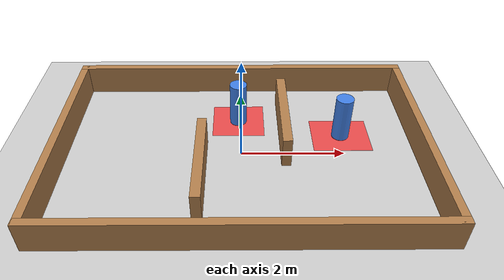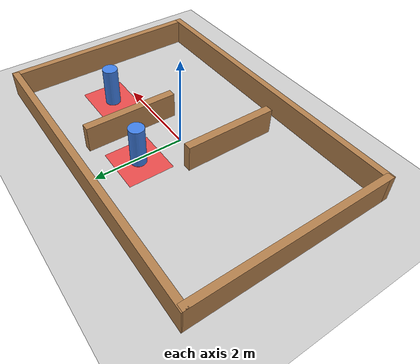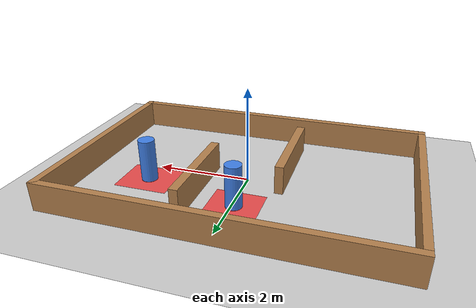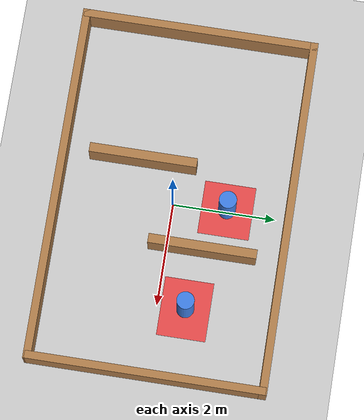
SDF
<?xml version="1.0"?>
<sdf version="1.6">
  <world name="default">

    <include>
      <uri>model://ground_plane</uri>
    </include>

    <include>
      <uri>model://sun</uri>
    </include>

    <scene>
      <shadows>false</shadows>
      <ambient>0.75 0.75 0.75 1.0</ambient>
      <background>0.95 0.95 0.95 1.0</background>
    </scene>

    <gui fullscreen='0'>
      <camera name='user_camera'>
        <pose frame=''>0.15 0.0 12.0 0 1.52 0</pose>
        <view_controller>orbit</view_controller>
        <projection_type>perspective</projection_type>
      </camera>
    </gui>

    <physics type="ode">
      <real_time_update_rate>0</real_time_update_rate>
      <max_step_size>0.001</max_step_size>
      <real_time_factor>0</real_time_factor>
      <ode>
        <solver>
          <type>quick</type>
          <iters>150</iters>
          <precon_iters>0</precon_iters>
          <sor>1.400000</sor>
          <use_dynamic_moi_rescaling>1</use_dynamic_moi_rescaling>
        </solver>
        <constraints>
          <cfm>0.00001</cfm>
          <erp>0.2</erp>
          <contact_max_correcting_vel>2000.000000</contact_max_correcting_vel>
          <contact_surface_layer>0.01000</contact_surface_layer>
        </constraints>
      </ode>
    </physics>

    <model name='room_shell'>
      <static>true</static>

      <link name='top_wall'>
        <collision name='top_wall_collision'>
          <pose>0 0 0.3 0 0 0</pose>
          <geometry>
            <box>
              <size>7.0 0.15 0.6</size>
            </box>
          </geometry>
        </collision>
        <visual name='top_wall_visual'>
          <pose>0 0 0.3 0 0 0</pose>
          <geometry>
            <box>
              <size>7.0 0.15 0.6</size>
            </box>
          </geometry>
          <material>
            <script>
              <uri>file://media/materials/scripts/gazebo.material</uri>
              <name>Gazebo/Wood</name>
            </script>
            <ambient>1 1 1 1</ambient>
          </material>
        </visual>
        <pose>0 2.25 0 0 0 0</pose>
      </link>

      <link name='bottom_wall'>
        <collision name='bottom_wall_collision'>
          <pose>0 0 0.3 0 0 0</pose>
          <geometry>
            <box>
              <size>7.0 0.15 0.6</size>
            </box>
          </geometry>
        </collision>
        <visual name='bottom_wall_visual'>
          <pose>0 0 0.3 0 0 0</pose>
          <geometry>
            <box>
              <size>7.0 0.15 0.6</size>
            </box>
          </geometry>
          <material>
            <script>
              <uri>file://media/materials/scripts/gazebo.material</uri>
              <name>Gazebo/Wood</name>
            </script>
            <ambient>1 1 1 1</ambient>
          </material>
        </visual>
        <pose>0 -2.25 0 0 0 0</pose>
      </link>

      <link name='left_wall'>
        <collision name='left_wall_collision'>
          <pose>0 0 0.3 0 0 0</pose>
          <geometry>
            <box>
              <size>4.6 0.15 0.6</size>
            </box>
          </geometry>
        </collision>
        <visual name='left_wall_visual'>
          <pose>0 0 0.3 0 0 0</pose>
          <geometry>
            <box>
              <size>4.6 0.15 0.6</size>
            </box>
          </geometry>
          <material>
            <script>
              <uri>file://media/materials/scripts/gazebo.material</uri>
              <name>Gazebo/Wood</name>
            </script>
            <ambient>1 1 1 1</ambient>
          </material>
        </visual>
        <pose>-3.425 0 0 0 0 1.5708</pose>
      </link>

      <link name='right_wall'>
        <collision name='right_wall_collision'>
          <pose>0 0 0.3 0 0 0</pose>
          <geometry>
            <box>
              <size>4.6 0.15 0.6</size>
            </box>
          </geometry>
        </collision>
        <visual name='right_wall_visual'>
          <pose>0 0 0.3 0 0 0</pose>
          <geometry>
            <box>
              <size>4.6 0.15 0.6</size>
            </box>
          </geometry>
          <material>
            <script>
              <uri>file://media/materials/scripts/gazebo.material</uri>
              <name>Gazebo/Wood</name>
            </script>
            <ambient>1 1 1 1</ambient>
          </material>
        </visual>
        <pose>3.425 0 0 0 0 1.5708</pose>
      </link>

      <link name='left_block'>
        <collision name='left_block_collision'>
          <pose>0 0 0.3 0 0 0</pose>
          <geometry>
            <box>
              <size>2.1 0.18 0.6</size>
            </box>
          </geometry>
        </collision>
        <visual name='left_block_visual'>
          <pose>0 0 0.3 0 0 0</pose>
          <geometry>
            <box>
              <size>2.1 0.18 0.6</size>
            </box>
          </geometry>
          <material>
            <script>
              <uri>file://media/materials/scripts/gazebo.material</uri>
              <name>Gazebo/Wood</name>
            </script>
            <ambient>1 1 1 1</ambient>
          </material>
        </visual>
        <pose>-0.75 -0.7 0 0 0 1.5708</pose>
      </link>

      <link name='mid_block'>
        <collision name='mid_block_collision'>
          <pose>0 0 0.3 0 0 0</pose>
          <geometry>
            <box>
              <size>2.1 0.18 0.6</size>
            </box>
          </geometry>
        </collision>
        <visual name='mid_block_visual'>
          <pose>0 0 0.3 0 0 0</pose>
          <geometry>
            <box>
              <size>2.1 0.18 0.6</size>
            </box>
          </geometry>
          <material>
            <script>
              <uri>file://media/materials/scripts/gazebo.material</uri>
              <name>Gazebo/Wood</name>
            </script>
            <ambient>1 1 1 1</ambient>
          </material>
        </visual>
        <pose>0.85 0.7 0 0 0 1.5708</pose>
      </link>
    </model>

    <model name='human_upper_turn'>
      <static>true</static>
      <pose>-0.05 1.05 0 0 0 0</pose>
      <link name='body'>
        <collision name='body_collision'>
          <pose>0 0 0.45 0 0 0</pose>
          <geometry>
            <cylinder>
              <radius>0.17</radius>
              <length>0.9</length>
            </cylinder>
          </geometry>
        </collision>
        <visual name='body_visual'>
          <pose>0 0 0.45 0 0 0</pose>
          <geometry>
            <cylinder>
              <radius>0.17</radius>
              <length>0.9</length>
            </cylinder>
          </geometry>
          <material>
            <ambient>0.25 0.5 0.9 1.0</ambient>
            <diffuse>0.25 0.5 0.9 1.0</diffuse>
          </material>
        </visual>
      </link>
    </model>

    <model name='human_goal_guard'>
      <static>true</static>
      <pose>2.0 0.55 0 0 0 0</pose>
      <link name='body'>
        <collision name='body_collision'>
          <pose>0 0 0.45 0 0 0</pose>
          <geometry>
            <cylinder>
              <radius>0.17</radius>
              <length>0.9</length>
            </cylinder>
          </geometry>
        </collision>
        <visual name='body_visual'>
          <pose>0 0 0.45 0 0 0</pose>
          <geometry>
            <cylinder>
              <radius>0.17</radius>
              <length>0.9</length>
            </cylinder>
          </geometry>
          <material>
            <ambient>0.25 0.5 0.9 1.0</ambient>
            <diffuse>0.25 0.5 0.9 1.0</diffuse>
          </material>
        </visual>
      </link>
    </model>

    <model name='upper_turn_zone'>
      <static>true</static>
      <pose>-0.05 1.05 0 0 0 0</pose>
      <link name='zone'>
        <visual name='zone_visual'>
          <pose>0 0 0.003 0 0 0</pose>
          <geometry>
            <box>
              <size>1.05 1.0 0.006</size>
            </box>
          </geometry>
          <transparency>0.3</transparency>
          <material>
            <ambient>1.0 0.12 0.12 1.0</ambient>
            <diffuse>1.0 0.12 0.12 1.0</diffuse>
          </material>
        </visual>
      </link>
    </model>

    <model name='goal_guard_zone'>
      <static>true</static>
      <pose>2.0 0.55 0 0 0 0</pose>
      <link name='zone'>
        <visual name='zone_visual'>
          <pose>0 0 0.003 0 0 0</pose>
          <geometry>
            <box>
              <size>1.15 0.95 0.006</size>
            </box>
          </geometry>
          <transparency>0.3</transparency>
          <material>
            <ambient>1.0 0.12 0.12 1.0</ambient>
            <diffuse>1.0 0.12 0.12 1.0</diffuse>
          </material>
        </visual>
      </link>
    </model>

  </world>
</sdf>
